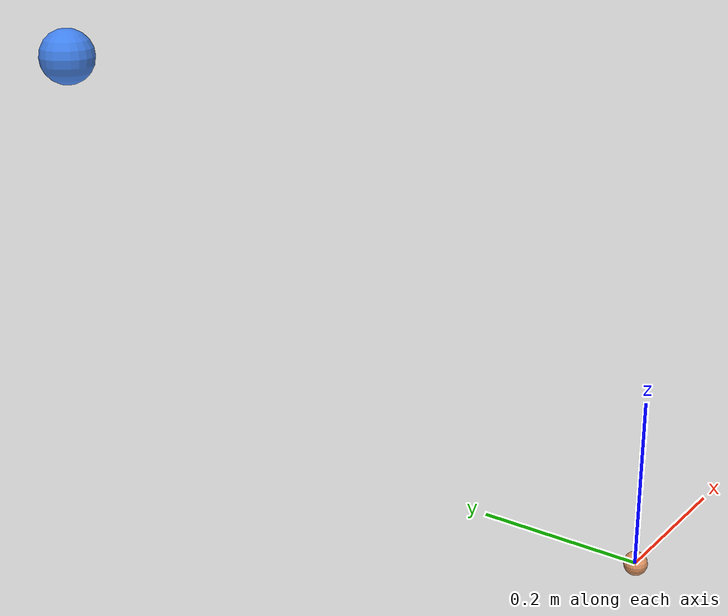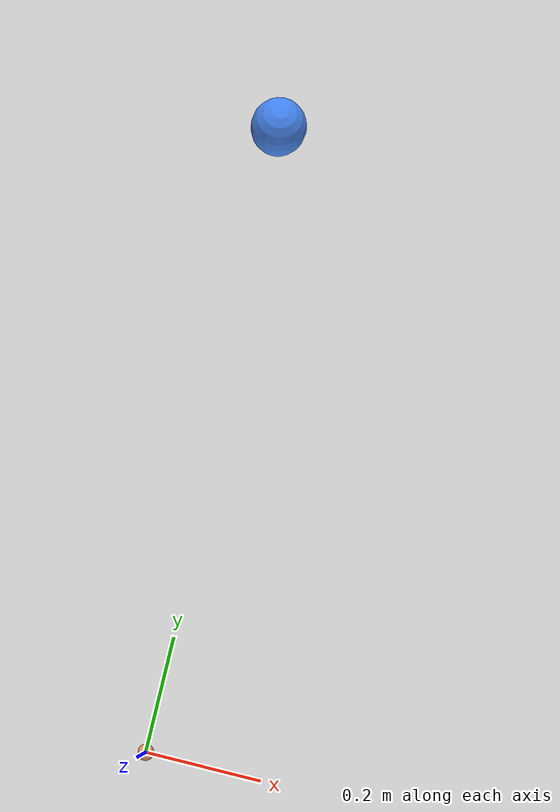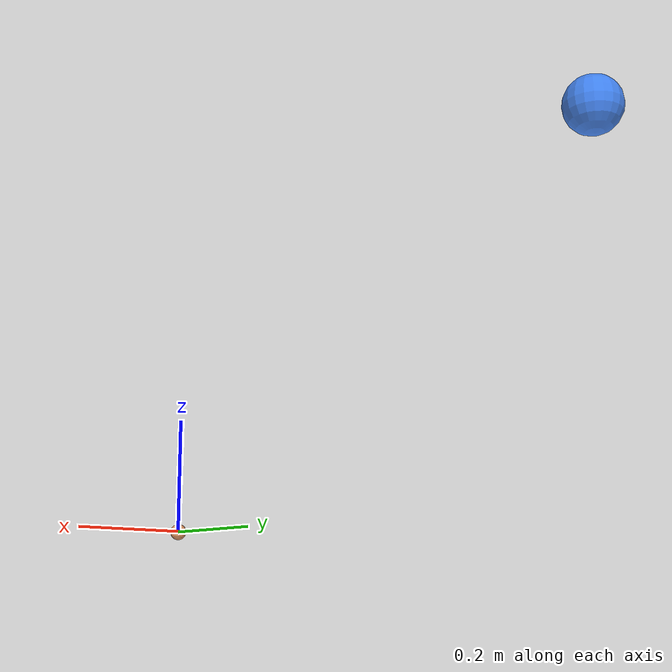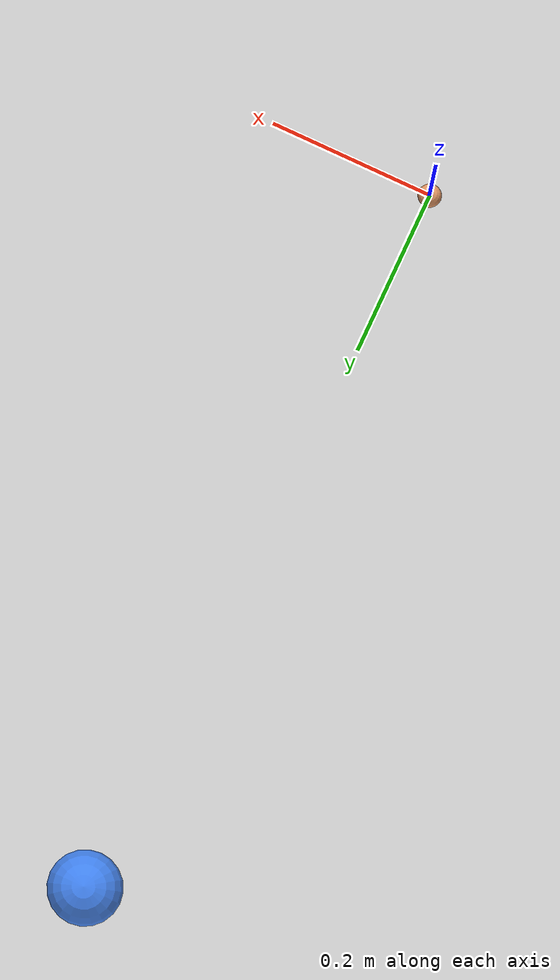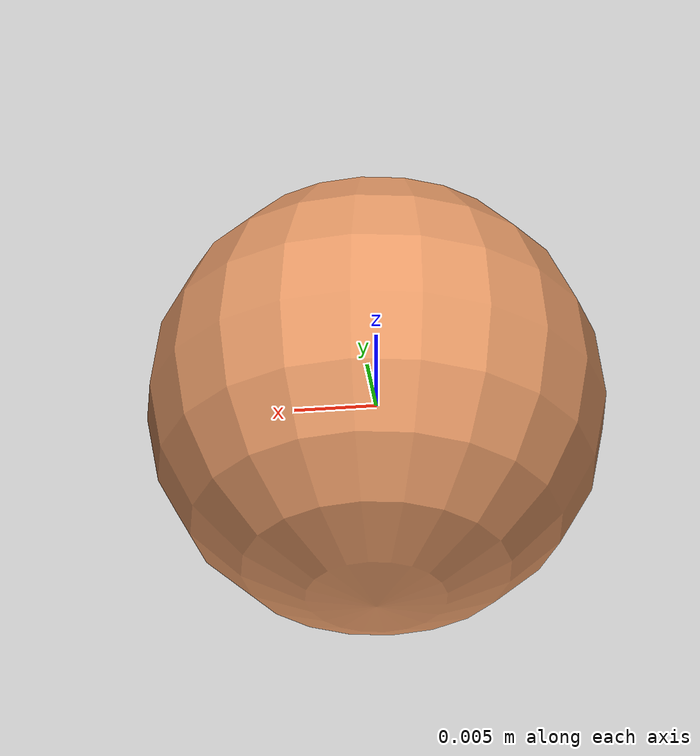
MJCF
<mujoco model="holos_hands">

  <option timestep="0.01" gravity="0 0 -9.81"/>

  <worldbody>

    <!-- ==================== RIGHT HAND ==================== -->

    <body name="r_thumbKnuckle" mocap="true">
      <geom type="sphere" size="0.008" rgba="0.9 0.6 0.4 1" contype="1" conaffinity="1"/>
    </body>
    <body name="r_thumbIntermediateBase" mocap="true">
      <geom type="sphere" size="0.007" rgba="0.9 0.6 0.4 1" contype="1" conaffinity="1"/>
    </body>
    <body name="r_thumbIntermediateTip" mocap="true">
      <geom type="sphere" size="0.007" rgba="0.9 0.6 0.4 1" contype="1" conaffinity="1"/>
    </body>
    <body name="r_thumbTip" mocap="true">
      <geom type="sphere" size="0.006" rgba="0.9 0.6 0.4 1" contype="1" conaffinity="1"/>
    </body>

    <body name="r_indexFingerMetacarpal" mocap="true">
      <geom type="sphere" size="0.008" rgba="0.9 0.6 0.4 1" contype="1" conaffinity="1"/>
    </body>
    <body name="r_indexFingerKnuckle" mocap="true">
      <geom type="sphere" size="0.008" rgba="0.9 0.6 0.4 1" contype="1" conaffinity="1"/>
    </body>
    <body name="r_indexFingerIntermediateBase" mocap="true">
      <geom type="sphere" size="0.007" rgba="0.9 0.6 0.4 1" contype="1" conaffinity="1"/>
    </body>
    <body name="r_indexFingerIntermediateTip" mocap="true">
      <geom type="sphere" size="0.007" rgba="0.9 0.6 0.4 1" contype="1" conaffinity="1"/>
    </body>
    <body name="r_indexFingerTip" mocap="true">
      <geom type="sphere" size="0.006" rgba="0.9 0.6 0.4 1" contype="1" conaffinity="1"/>
    </body>

    <body name="r_middleFingerMetacarpal" mocap="true">
      <geom type="sphere" size="0.008" rgba="0.9 0.6 0.4 1" contype="1" conaffinity="1"/>
    </body>
    <body name="r_middleFingerKnuckle" mocap="true">
      <geom type="sphere" size="0.008" rgba="0.9 0.6 0.4 1" contype="1" conaffinity="1"/>
    </body>
    <body name="r_middleFingerIntermediateBase" mocap="true">
      <geom type="sphere" size="0.007" rgba="0.9 0.6 0.4 1" contype="1" conaffinity="1"/>
    </body>
    <body name="r_middleFingerIntermediateTip" mocap="true">
      <geom type="sphere" size="0.007" rgba="0.9 0.6 0.4 1" contype="1" conaffinity="1"/>
    </body>
    <body name="r_middleFingerTip" mocap="true">
      <geom type="sphere" size="0.006" rgba="0.9 0.6 0.4 1" contype="1" conaffinity="1"/>
    </body>

    <body name="r_ringFingerMetacarpal" mocap="true">
      <geom type="sphere" size="0.008" rgba="0.9 0.6 0.4 1" contype="1" conaffinity="1"/>
    </body>
    <body name="r_ringFingerKnuckle" mocap="true">
      <geom type="sphere" size="0.008" rgba="0.9 0.6 0.4 1" contype="1" conaffinity="1"/>
    </body>
    <body name="r_ringFingerIntermediateBase" mocap="true">
      <geom type="sphere" size="0.007" rgba="0.9 0.6 0.4 1" contype="1" conaffinity="1"/>
    </body>
    <body name="r_ringFingerIntermediateTip" mocap="true">
      <geom type="sphere" size="0.007" rgba="0.9 0.6 0.4 1" contype="1" conaffinity="1"/>
    </body>
    <body name="r_ringFingerTip" mocap="true">
      <geom type="sphere" size="0.006" rgba="0.9 0.6 0.4 1" contype="1" conaffinity="1"/>
    </body>

    <body name="r_littleFingerMetacarpal" mocap="true">
      <geom type="sphere" size="0.008" rgba="0.9 0.6 0.4 1" contype="1" conaffinity="1"/>
    </body>
    <body name="r_littleFingerKnuckle" mocap="true">
      <geom type="sphere" size="0.008" rgba="0.9 0.6 0.4 1" contype="1" conaffinity="1"/>
    </body>
    <body name="r_littleFingerIntermediateBase" mocap="true">
      <geom type="sphere" size="0.007" rgba="0.9 0.6 0.4 1" contype="1" conaffinity="1"/>
    </body>
    <body name="r_littleFingerIntermediateTip" mocap="true">
      <geom type="sphere" size="0.007" rgba="0.9 0.6 0.4 1" contype="1" conaffinity="1"/>
    </body>
    <body name="r_littleFingerTip" mocap="true">
      <geom type="sphere" size="0.006" rgba="0.9 0.6 0.4 1" contype="1" conaffinity="1"/>
    </body>

    <body name="r_forearmWrist" mocap="true">
      <geom type="sphere" size="0.012" rgba="0.9 0.6 0.4 1" contype="1" conaffinity="1"/>
    </body>
    <body name="r_forearmArm" mocap="true">
      <geom type="sphere" size="0.014" rgba="0.9 0.6 0.4 1" contype="1" conaffinity="1"/>
    </body>

    <!-- ==================== LEFT HAND ==================== -->

    <body name="l_thumbKnuckle" mocap="true">
      <geom type="sphere" size="0.008" rgba="0.4 0.6 0.9 1" contype="1" conaffinity="1"/>
    </body>
    <body name="l_thumbIntermediateBase" mocap="true">
      <geom type="sphere" size="0.007" rgba="0.4 0.6 0.9 1" contype="1" conaffinity="1"/>
    </body>
    <body name="l_thumbIntermediateTip" mocap="true">
      <geom type="sphere" size="0.007" rgba="0.4 0.6 0.9 1" contype="1" conaffinity="1"/>
    </body>
    <body name="l_thumbTip" mocap="true">
      <geom type="sphere" size="0.006" rgba="0.4 0.6 0.9 1" contype="1" conaffinity="1"/>
    </body>

    <body name="l_indexFingerMetacarpal" mocap="true">
      <geom type="sphere" size="0.008" rgba="0.4 0.6 0.9 1" contype="1" conaffinity="1"/>
    </body>
    <body name="l_indexFingerKnuckle" mocap="true">
      <geom type="sphere" size="0.008" rgba="0.4 0.6 0.9 1" contype="1" conaffinity="1"/>
    </body>
    <body name="l_indexFingerIntermediateBase" mocap="true">
      <geom type="sphere" size="0.007" rgba="0.4 0.6 0.9 1" contype="1" conaffinity="1"/>
    </body>
    <body name="l_indexFingerIntermediateTip" mocap="true">
      <geom type="sphere" size="0.007" rgba="0.4 0.6 0.9 1" contype="1" conaffinity="1"/>
    </body>
    <body name="l_indexFingerTip" mocap="true">
      <geom type="sphere" size="0.006" rgba="0.4 0.6 0.9 1" contype="1" conaffinity="1"/>
    </body>

    <body name="l_middleFingerMetacarpal" mocap="true">
      <geom type="sphere" size="0.008" rgba="0.4 0.6 0.9 1" contype="1" conaffinity="1"/>
    </body>
    <body name="l_middleFingerKnuckle" mocap="true">
      <geom type="sphere" size="0.008" rgba="0.4 0.6 0.9 1" contype="1" conaffinity="1"/>
    </body>
    <body name="l_middleFingerIntermediateBase" mocap="true">
      <geom type="sphere" size="0.007" rgba="0.4 0.6 0.9 1" contype="1" conaffinity="1"/>
    </body>
    <body name="l_middleFingerIntermediateTip" mocap="true">
      <geom type="sphere" size="0.007" rgba="0.4 0.6 0.9 1" contype="1" conaffinity="1"/>
    </body>
    <body name="l_middleFingerTip" mocap="true">
      <geom type="sphere" size="0.006" rgba="0.4 0.6 0.9 1" contype="1" conaffinity="1"/>
    </body>

    <body name="l_ringFingerMetacarpal" mocap="true">
      <geom type="sphere" size="0.008" rgba="0.4 0.6 0.9 1" contype="1" conaffinity="1"/>
    </body>
    <body name="l_ringFingerKnuckle" mocap="true">
      <geom type="sphere" size="0.008" rgba="0.4 0.6 0.9 1" contype="1" conaffinity="1"/>
    </body>
    <body name="l_ringFingerIntermediateBase" mocap="true">
      <geom type="sphere" size="0.007" rgba="0.4 0.6 0.9 1" contype="1" conaffinity="1"/>
    </body>
    <body name="l_ringFingerIntermediateTip" mocap="true">
      <geom type="sphere" size="0.007" rgba="0.4 0.6 0.9 1" contype="1" conaffinity="1"/>
    </body>
    <body name="l_ringFingerTip" mocap="true">
      <geom type="sphere" size="0.006" rgba="0.4 0.6 0.9 1" contype="1" conaffinity="1"/>
    </body>

    <body name="l_littleFingerMetacarpal" mocap="true">
      <geom type="sphere" size="0.008" rgba="0.4 0.6 0.9 1" contype="1" conaffinity="1"/>
    </body>
    <body name="l_littleFingerKnuckle" mocap="true">
      <geom type="sphere" size="0.008" rgba="0.4 0.6 0.9 1" contype="1" conaffinity="1"/>
    </body>
    <body name="l_littleFingerIntermediateBase" mocap="true">
      <geom type="sphere" size="0.007" rgba="0.4 0.6 0.9 1" contype="1" conaffinity="1"/>
    </body>
    <body name="l_littleFingerIntermediateTip" mocap="true">
      <geom type="sphere" size="0.007" rgba="0.4 0.6 0.9 1" contype="1" conaffinity="1"/>
    </body>
    <body name="l_littleFingerTip" mocap="true">
      <geom type="sphere" size="0.006" rgba="0.4 0.6 0.9 1" contype="1" conaffinity="1"/>
    </body>

    <body name="l_forearmWrist" mocap="true">
      <geom type="sphere" size="0.012" rgba="0.4 0.6 0.9 1" contype="1" conaffinity="1"/>
    </body>
    <body name="l_forearmArm" mocap="true">
      <geom type="sphere" size="0.014" rgba="0.4 0.6 0.9 1" contype="1" conaffinity="1"/>
    </body>

    <!-- ==================== PRESSURE BALL ==================== -->
    <!-- A free rigid sphere that hands can physically push.
         Its position is purely MuJoCo output — we never write to it directly.
         Starts between where the hands typically meet. -->
    <body name="pressure_ball" pos="0 0.9 0.5">
      <freejoint name="ball_free"/>
      <geom name="ball_geom" type="sphere" size="0.04"
            rgba="0.2 0.5 1.0 0.85"
            contype="1" conaffinity="1"
            mass="0.05"/>
    </body>

  </worldbody>

</mujoco>
